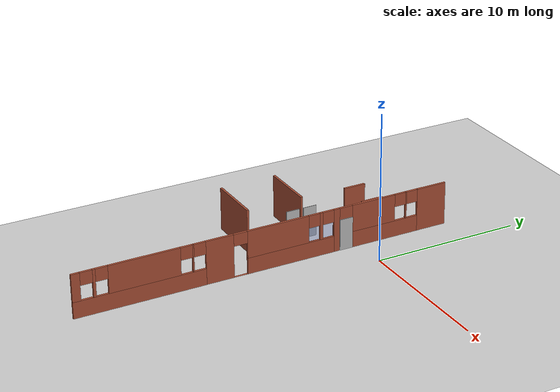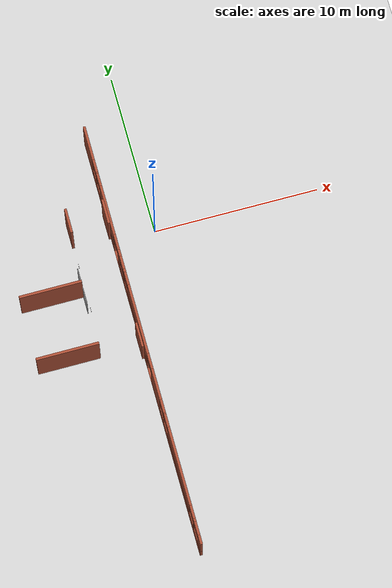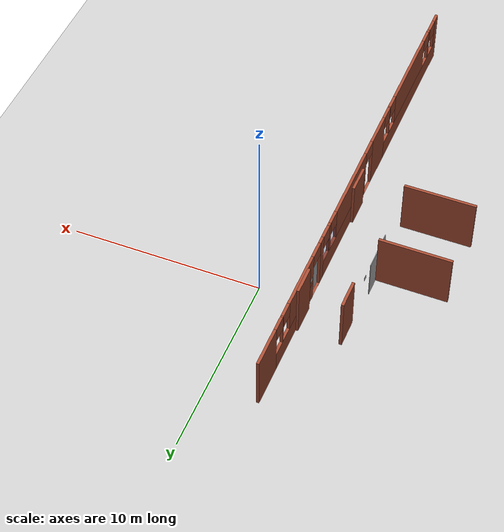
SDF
<sdf version="1.6">
 <world name="default">
  <model name="ground_plane">
   <static>1</static>
   <link name="link">
    <collision name="collision">
     <geometry><plane><normal>0 0 1</normal><size>100 100</size></plane></geometry>
     <surface><friction><ode><mu>100</mu><mu2>50</mu2></ode></friction></surface>
    </collision>
    <visual name="visual">
     <cast_shadows>0</cast_shadows>
     <geometry><plane><normal>0 0 1</normal><size>100 100</size></plane></geometry>
     <material>
      <script><uri>file://media/materials/scripts/gazebo.material</uri><name>Gazebo/Grey</name></script>
     </material>
    </visual>
   </link>
  </model>
  <model name="UNFRGS_INF_-_Predio_73">
   <pose>-0.02513 1.0401 -0.009 0 -0 0</pose>
   <link name="Wall_142">
    <pose>-2.51213 -7.60722 0 0 0 -1.5708</pose>
    <visual name="Wall_142_Visual_0">
     <pose>-11.9297 0 1.48 0 -0 0</pose>
     <geometry><box><size>2.14059 0.15 2.96</size></box></geometry>
     <material>
      <script><uri>file://media/materials/scripts/gazebo.material</uri><name>Gazebo/Bricks</name></script>
      <ambient>0.929412 1 0.760784 1</ambient>
     </material>
     <meta><layer>0</layer></meta>
    </visual>
    <collision name="Wall_142_Collision_0">
     <geometry><box><size>2.14059 0.15 2.96</size></box></geometry>
     <pose>-11.9297 0 1.48 0 -0 0</pose>
    </collision>
    <visual name="Wall_142_Visual_1">
     <pose>-4.8989 0 1.48 0 -0 0</pose>
     <geometry><box><size>0.419844 0.15 2.96</size></box></geometry>
     <material>
      <script><uri>file://media/materials/scripts/gazebo.material</uri><name>Gazebo/Bricks</name></script>
      <ambient>0.929412 1 0.760784 1</ambient>
     </material>
     <meta><layer>0</layer></meta>
    </visual>
    <collision name="Wall_142_Collision_1">
     <geometry><box><size>0.419844 0.15 2.96</size></box></geometry>
     <pose>-4.8989 0 1.48 0 -0 0</pose>
    </collision>
    <visual name="Wall_142_Visual_2">
     <pose>3.3104 0 1.48 0 -0 0</pose>
     <geometry><box><size>1.8907 0.15 2.96</size></box></geometry>
     <material>
      <script><uri>file://media/materials/scripts/gazebo.material</uri><name>Gazebo/Bricks</name></script>
      <ambient>0.929412 1 0.760784 1</ambient>
     </material>
     <meta><layer>0</layer></meta>
    </visual>
    <collision name="Wall_142_Collision_2">
     <geometry><box><size>1.8907 0.15 2.96</size></box></geometry>
     <pose>3.3104 0 1.48 0 -0 0</pose>
    </collision>
    <visual name="Wall_142_Visual_3">
     <pose>-8.45412 0 0.55 0 -0 0</pose>
     <geometry><box><size>4.81058 0.15 1.11</size></box></geometry>
     <material>
      <script><uri>file://media/materials/scripts/gazebo.material</uri><name>Gazebo/Bricks</name></script>
      <ambient>0.929412 1 0.760784 1</ambient>
     </material>
     <meta><layer>0</layer></meta>
    </visual>
    <collision name="Wall_142_Collision_3">
     <geometry><box><size>4.81058 0.15 1.11</size></box></geometry>
     <pose>-8.45412 0 0.55 0 -0 0</pose>
    </collision>
    <visual name="Wall_142_Visual_4">
     <pose>-1.63197 0 0.55 0 -0 0</pose>
     <geometry><box><size>6.11403 0.15 1.11</size></box></geometry>
     <material>
      <script><uri>file://media/materials/scripts/gazebo.material</uri><name>Gazebo/Bricks</name></script>
      <ambient>0.929412 1 0.760784 1</ambient>
     </material>
     <meta><layer>0</layer></meta>
    </visual>
    <collision name="Wall_142_Collision_4">
     <geometry><box><size>6.11403 0.15 1.11</size></box></geometry>
     <pose>-1.63197 0 0.55 0 -0 0</pose>
    </collision>
    <visual name="Wall_142_Visual_5">
     <pose>8.62787 0 0.55 0 -0 0</pose>
     <geometry><box><size>8.74425 0.15 1.11</size></box></geometry>
     <material>
      <script><uri>file://media/materials/scripts/gazebo.material</uri><name>Gazebo/Bricks</name></script>
      <ambient>0.929412 1 0.760784 1</ambient>
     </material>
     <meta><layer>0</layer></meta>
    </visual>
    <collision name="Wall_142_Collision_5">
     <geometry><box><size>8.74425 0.15 1.11</size></box></geometry>
     <pose>8.62787 0 0.55 0 -0 0</pose>
    </collision>
    <visual name="Wall_142_Visual_6">
     <pose>-6.04883 0 1.48 0 -0 0</pose>
     <geometry><box><size>0.001 0.15 2.96</size></box></geometry>
     <material>
      <script><uri>file://media/materials/scripts/gazebo.material</uri><name>Gazebo/Bricks</name></script>
      <ambient>0.929412 1 0.760784 1</ambient>
     </material>
     <meta><layer>0</layer></meta>
    </visual>
    <collision name="Wall_142_Collision_6">
     <geometry><box><size>0.001 0.15 2.96</size></box></geometry>
     <pose>-6.04883 0 1.48 0 -0 0</pose>
    </collision>
    <visual name="Wall_142_Visual_7">
     <pose>1.89505 0 0 0 -0 0</pose>
     <geometry><box><size>0.94 0.15 0.001</size></box></geometry>
     <material>
      <script><uri>file://media/materials/scripts/gazebo.material</uri><name>Gazebo/Bricks</name></script>
      <ambient>0.929412 1 0.760784 1</ambient>
     </material>
     <meta><layer>0</layer></meta>
    </visual>
    <collision name="Wall_142_Collision_7">
     <geometry><box><size>0.94 0.15 0.001</size></box></geometry>
     <pose>1.89505 0 0 0 -0 0</pose>
    </collision>
    <visual name="Wall_142_Visual_8">
     <pose>-5.57883 0 0 0 -0 0</pose>
     <geometry><box><size>0.94 0.15 0.001</size></box></geometry>
     <material>
      <script><uri>file://media/materials/scripts/gazebo.material</uri><name>Gazebo/Bricks</name></script>
      <ambient>0.929412 1 0.760784 1</ambient>
     </material>
     <meta><layer>0</layer></meta>
    </visual>
    <collision name="Wall_142_Collision_8">
     <geometry><box><size>0.94 0.15 0.001</size></box></geometry>
     <pose>-5.57883 0 0 0 -0 0</pose>
    </collision>
    <visual name="Wall_142_Visual_9">
     <pose>-10.017 0 2.03 0 -0 0</pose>
     <geometry><box><size>0.084906 0.15 1.86</size></box></geometry>
     <material>
      <script><uri>file://media/materials/scripts/gazebo.material</uri><name>Gazebo/Bricks</name></script>
      <ambient>0.929412 1 0.760784 1</ambient>
     </material>
     <meta><layer>0</layer></meta>
    </visual>
    <collision name="Wall_142_Collision_9">
     <geometry><box><size>0.084906 0.15 1.86</size></box></geometry>
     <pose>-10.017 0 2.03 0 -0 0</pose>
    </collision>
    <visual name="Wall_142_Visual_10">
     <pose>-7.61167 0 2.03 0 -0 0</pose>
     <geometry><box><size>3.12568 0.15 1.86</size></box></geometry>
     <material>
      <script><uri>file://media/materials/scripts/gazebo.material</uri><name>Gazebo/Bricks</name></script>
      <ambient>0.929412 1 0.760784 1</ambient>
     </material>
     <meta><layer>0</layer></meta>
    </visual>
    <collision name="Wall_142_Collision_10">
     <geometry><box><size>3.12568 0.15 1.86</size></box></geometry>
     <pose>-7.61167 0 2.03 0 -0 0</pose>
    </collision>
    <visual name="Wall_142_Visual_11">
     <pose>-7.61167 0 2.03 0 -0 0</pose>
     <geometry><box><size>3.12568 0.15 1.86</size></box></geometry>
     <material>
      <script><uri>file://media/materials/scripts/gazebo.material</uri><name>Gazebo/Bricks</name></script>
      <ambient>0.929412 1 0.760784 1</ambient>
     </material>
     <meta><layer>0</layer></meta>
    </visual>
    <collision name="Wall_142_Collision_11">
     <geometry><box><size>3.12568 0.15 1.86</size></box></geometry>
     <pose>-7.61167 0 2.03 0 -0 0</pose>
    </collision>
    <visual name="Wall_142_Visual_12">
     <pose>-3.78674 0 2.03 0 -0 0</pose>
     <geometry><box><size>0.204488 0.15 1.86</size></box></geometry>
     <material>
      <script><uri>file://media/materials/scripts/gazebo.material</uri><name>Gazebo/Bricks</name></script>
      <ambient>0.929412 1 0.760784 1</ambient>
     </material>
     <meta><layer>0</layer></meta>
    </visual>
    <collision name="Wall_142_Collision_12">
     <geometry><box><size>0.204488 0.15 1.86</size></box></geometry>
     <pose>-3.78674 0 2.03 0 -0 0</pose>
    </collision>
    <visual name="Wall_142_Visual_13">
     <pose>-0.729724 0 2.03 0 -0 0</pose>
     <geometry><box><size>4.30954 0.15 1.86</size></box></geometry>
     <material>
      <script><uri>file://media/materials/scripts/gazebo.material</uri><name>Gazebo/Bricks</name></script>
      <ambient>0.929412 1 0.760784 1</ambient>
     </material>
     <meta><layer>0</layer></meta>
    </visual>
    <collision name="Wall_142_Collision_13">
     <geometry><box><size>4.30954 0.15 1.86</size></box></geometry>
     <pose>-0.729724 0 2.03 0 -0 0</pose>
    </collision>
    <visual name="Wall_142_Visual_14">
     <pose>-0.729724 0 2.03 0 -0 0</pose>
     <geometry><box><size>4.30954 0.15 1.86</size></box></geometry>
     <material>
      <script><uri>file://media/materials/scripts/gazebo.material</uri><name>Gazebo/Bricks</name></script>
      <ambient>0.929412 1 0.760784 1</ambient>
     </material>
     <meta><layer>0</layer></meta>
    </visual>
    <collision name="Wall_142_Collision_14">
     <geometry><box><size>4.30954 0.15 1.86</size></box></geometry>
     <pose>-0.729724 0 2.03 0 -0 0</pose>
    </collision>
    <visual name="Wall_142_Visual_15">
     <pose>5.0982 0 2.03 0 -0 0</pose>
     <geometry><box><size>0.084907 0.15 1.86</size></box></geometry>
     <material>
      <script><uri>file://media/materials/scripts/gazebo.material</uri><name>Gazebo/Bricks</name></script>
      <ambient>0.929412 1 0.760784 1</ambient>
     </material>
     <meta><layer>0</layer></meta>
    </visual>
    <collision name="Wall_142_Collision_15">
     <geometry><box><size>0.084907 0.15 1.86</size></box></geometry>
     <pose>5.0982 0 2.03 0 -0 0</pose>
    </collision>
    <visual name="Wall_142_Visual_16">
     <pose>8.303 0 2.03 0 -0 0</pose>
     <geometry><box><size>4.72469 0.15 1.86</size></box></geometry>
     <material>
      <script><uri>file://media/materials/scripts/gazebo.material</uri><name>Gazebo/Bricks</name></script>
      <ambient>0.929412 1 0.760784 1</ambient>
     </material>
     <meta><layer>0</layer></meta>
    </visual>
    <collision name="Wall_142_Collision_16">
     <geometry><box><size>4.72469 0.15 1.86</size></box></geometry>
     <pose>8.303 0 2.03 0 -0 0</pose>
    </collision>
    <visual name="Wall_142_Visual_17">
     <pose>11.5556 0 2.03 0 -0 0</pose>
     <geometry><box><size>0.180572 0.15 1.86</size></box></geometry>
     <material>
      <script><uri>file://media/materials/scripts/gazebo.material</uri><name>Gazebo/Bricks</name></script>
      <ambient>0.929412 1 0.760784 1</ambient>
     </material>
     <meta><layer>0</layer></meta>
    </visual>
    <collision name="Wall_142_Collision_17">
     <geometry><box><size>0.180572 0.15 1.86</size></box></geometry>
     <pose>11.5556 0 2.03 0 -0 0</pose>
    </collision>
    <visual name="Wall_142_Visual_18">
     <pose>12.723 0 2.03 0 -0 0</pose>
     <geometry><box><size>0.55409 0.15 1.86</size></box></geometry>
     <material>
      <script><uri>file://media/materials/scripts/gazebo.material</uri><name>Gazebo/Bricks</name></script>
      <ambient>0.929412 1 0.760784 1</ambient>
     </material>
     <meta><layer>0</layer></meta>
    </visual>
    <collision name="Wall_142_Collision_18">
     <geometry><box><size>0.55409 0.15 1.86</size></box></geometry>
     <pose>12.723 0 2.03 0 -0 0</pose>
    </collision>
    <visual name="Wall_142_Visual_19">
     <pose>-10.4594 0 2.53 0 -0 0</pose>
     <geometry><box><size>0.8 0.15 0.86</size></box></geometry>
     <material>
      <script><uri>file://media/materials/scripts/gazebo.material</uri><name>Gazebo/Bricks</name></script>
      <ambient>0.929412 1 0.760784 1</ambient>
     </material>
     <meta><layer>0</layer></meta>
    </visual>
    <collision name="Wall_142_Collision_19">
     <geometry><box><size>0.8 0.15 0.86</size></box></geometry>
     <pose>-10.4594 0 2.53 0 -0 0</pose>
    </collision>
    <visual name="Wall_142_Visual_20">
     <pose>-4.28898 0 2.53 0 -0 0</pose>
     <geometry><box><size>0.8 0.15 0.86</size></box></geometry>
     <material>
      <script><uri>file://media/materials/scripts/gazebo.material</uri><name>Gazebo/Bricks</name></script>
      <ambient>0.929412 1 0.760784 1</ambient>
     </material>
     <meta><layer>0</layer></meta>
    </visual>
    <collision name="Wall_142_Collision_20">
     <geometry><box><size>0.8 0.15 0.86</size></box></geometry>
     <pose>-4.28898 0 2.53 0 -0 0</pose>
    </collision>
    <visual name="Wall_142_Visual_21">
     <pose>4.65575 0 2.53 0 -0 0</pose>
     <geometry><box><size>0.8 0.15 0.86</size></box></geometry>
     <material>
      <script><uri>file://media/materials/scripts/gazebo.material</uri><name>Gazebo/Bricks</name></script>
      <ambient>0.929412 1 0.760784 1</ambient>
     </material>
     <meta><layer>0</layer></meta>
    </visual>
    <collision name="Wall_142_Collision_21">
     <geometry><box><size>0.8 0.15 0.86</size></box></geometry>
     <pose>4.65575 0 2.53 0 -0 0</pose>
    </collision>
    <visual name="Wall_142_Visual_22">
     <pose>-9.5745 0 2.53 0 -0 0</pose>
     <geometry><box><size>0.8 0.15 0.86</size></box></geometry>
     <material>
      <script><uri>file://media/materials/scripts/gazebo.material</uri><name>Gazebo/Bricks</name></script>
      <ambient>0.929412 1 0.760784 1</ambient>
     </material>
     <meta><layer>0</layer></meta>
    </visual>
    <collision name="Wall_142_Collision_22">
     <geometry><box><size>0.8 0.15 0.86</size></box></geometry>
     <pose>-9.5745 0 2.53 0 -0 0</pose>
    </collision>
    <visual name="Wall_142_Visual_23">
     <pose>-3.28449 0 2.53 0 -0 0</pose>
     <geometry><box><size>0.8 0.15 0.86</size></box></geometry>
     <material>
      <script><uri>file://media/materials/scripts/gazebo.material</uri><name>Gazebo/Bricks</name></script>
      <ambient>0.929412 1 0.760784 1</ambient>
     </material>
     <meta><layer>0</layer></meta>
    </visual>
    <collision name="Wall_142_Collision_23">
     <geometry><box><size>0.8 0.15 0.86</size></box></geometry>
     <pose>-3.28449 0 2.53 0 -0 0</pose>
    </collision>
    <visual name="Wall_142_Visual_24">
     <pose>5.54065 0 2.53 0 -0 0</pose>
     <geometry><box><size>0.8 0.15 0.86</size></box></geometry>
     <material>
      <script><uri>file://media/materials/scripts/gazebo.material</uri><name>Gazebo/Bricks</name></script>
      <ambient>0.929412 1 0.760784 1</ambient>
     </material>
     <meta><layer>0</layer></meta>
    </visual>
    <collision name="Wall_142_Collision_24">
     <geometry><box><size>0.8 0.15 0.86</size></box></geometry>
     <pose>5.54065 0 2.53 0 -0 0</pose>
    </collision>
    <visual name="Wall_142_Visual_25">
     <pose>11.0653 0 2.53 0 -0 0</pose>
     <geometry><box><size>0.8 0.15 0.86</size></box></geometry>
     <material>
      <script><uri>file://media/materials/scripts/gazebo.material</uri><name>Gazebo/Bricks</name></script>
      <ambient>0.929412 1 0.760784 1</ambient>
     </material>
     <meta><layer>0</layer></meta>
    </visual>
    <collision name="Wall_142_Collision_25">
     <geometry><box><size>0.8 0.15 0.86</size></box></geometry>
     <pose>11.0653 0 2.53 0 -0 0</pose>
    </collision>
    <visual name="Wall_142_Visual_26">
     <pose>12.0459 0 2.53 0 -0 0</pose>
     <geometry><box><size>0.8 0.15 0.86</size></box></geometry>
     <material>
      <script><uri>file://media/materials/scripts/gazebo.material</uri><name>Gazebo/Bricks</name></script>
      <ambient>0.929412 1 0.760784 1</ambient>
     </material>
     <meta><layer>0</layer></meta>
    </visual>
    <collision name="Wall_142_Collision_26">
     <geometry><box><size>0.8 0.15 0.86</size></box></geometry>
     <pose>12.0459 0 2.53 0 -0 0</pose>
    </collision>
    <visual name="Wall_142_Visual_27">
     <pose>-5.57883 0 2.555 0 -0 0</pose>
     <geometry><box><size>0.94 0.15 0.81</size></box></geometry>
     <material>
      <script><uri>file://media/materials/scripts/gazebo.material</uri><name>Gazebo/Bricks</name></script>
      <ambient>0.929412 1 0.760784 1</ambient>
     </material>
     <meta><layer>0</layer></meta>
    </visual>
    <collision name="Wall_142_Collision_27">
     <geometry><box><size>0.94 0.15 0.81</size></box></geometry>
     <pose>-5.57883 0 2.555 0 -0 0</pose>
    </collision>
    <visual name="Wall_142_Visual_28">
     <pose>1.89505 0 2.555 0 -0 0</pose>
     <geometry><box><size>0.94 0.15 0.81</size></box></geometry>
     <material>
      <script><uri>file://media/materials/scripts/gazebo.material</uri><name>Gazebo/Bricks</name></script>
      <ambient>0.929412 1 0.760784 1</ambient>
     </material>
     <meta><layer>0</layer></meta>
    </visual>
    <collision name="Wall_142_Collision_28">
     <geometry><box><size>0.94 0.15 0.81</size></box></geometry>
     <pose>1.89505 0 2.555 0 -0 0</pose>
    </collision>
    <visual name="Wall_142_Visual_29">
     <pose>1.89505 0 2.555 0 -0 0</pose>
     <geometry><box><size>0.94 0.15 0.81</size></box></geometry>
     <material>
      <script><uri>file://media/materials/scripts/gazebo.material</uri><name>Gazebo/Bricks</name></script>
      <ambient>0.929412 1 0.760784 1</ambient>
     </material>
     <meta><layer>0</layer></meta>
    </visual>
    <collision name="Wall_142_Collision_29">
     <geometry><box><size>0.94 0.15 0.81</size></box></geometry>
     <pose>1.89505 0 2.555 0 -0 0</pose>
    </collision>
   </link>
   <link name="Wall_177">
    <collision name="Wall_177_Collision">
     <geometry><box><size>1.5 0.15 2.96</size></box></geometry>
     <pose>0 0 1.48 0 -0 0</pose>
    </collision>
    <visual name="Wall_177_Visual">
     <pose>0 0 1.48 0 -0 0</pose>
     <geometry><box><size>1.5 0.15 2.96</size></box></geometry>
     <material>
      <script><uri>file://media/materials/scripts/gazebo.material</uri><name>Gazebo/Bricks</name></script>
      <ambient>0.929412 1 0.760784 1</ambient>
     </material>
     <meta><layer>0</layer></meta>
    </visual>
    <pose>-4.87613 -0.024219 0 0 0 -1.5708</pose>
   </link>
   <link name="Wall_183">
    <collision name="Wall_183_Collision">
     <geometry><box><size>3.75 0.15 2.96</size></box></geometry>
     <pose>0 0 1.48 0 -0 0</pose>
    </collision>
    <visual name="Wall_183_Visual">
     <pose>0 0 1.48 0 -0 0</pose>
     <geometry><box><size>3.75 0.15 2.96</size></box></geometry>
     <material>
      <script><uri>file://media/materials/scripts/gazebo.material</uri><name>Gazebo/Bricks</name></script>
      <ambient>0.929412 1 0.760784 1</ambient>
     </material>
     <meta><layer>0</layer></meta>
    </visual>
    <pose>-6.94213 -3.80022 0 0 -0 0</pose>
   </link>
   <link name="Wall_185">
    <collision name="Wall_185_Collision">
     <geometry><box><size>1.5 0.15 2.96</size></box></geometry>
     <pose>0 0 1.48 0 -0 0</pose>
    </collision>
    <visual name="Wall_185_Visual">
     <pose>0 0 1.48 0 -0 0</pose>
     <geometry><box><size>1.5 0.15 2.96</size></box></geometry>
     <material>
      <script><uri>file://media/materials/scripts/gazebo.material</uri><name>Gazebo/Bricks</name></script>
      <ambient>0.929412 1 0.760784 1</ambient>
     </material>
     <meta><layer>0</layer></meta>
    </visual>
    <pose>-2.63613 -0.038219 0 0 0 -1.5708</pose>
   </link>
   <link name="Wall_197">
    <collision name="Wall_197_Collision">
     <geometry><box><size>3.75 0.15 2.96</size></box></geometry>
     <pose>0 0 1.48 0 -0 0</pose>
    </collision>
    <visual name="Wall_197_Visual">
     <pose>0 0 1.48 0 -0 0</pose>
     <geometry><box><size>3.75 0.15 2.96</size></box></geometry>
     <material>
      <script><uri>file://media/materials/scripts/gazebo.material</uri><name>Gazebo/Bricks</name></script>
      <ambient>0.929412 1 0.760784 1</ambient>
     </material>
     <meta><layer>0</layer></meta>
    </visual>
    <pose>-6.92813 -7.66622 0 0 -0 0</pose>
   </link>
   <link name="Wall_203">
    <collision name="Wall_203_Collision">
     <geometry><box><size>1.5 0.15 2.5</size></box></geometry>
     <pose>0 0 1.25 0 -0 0</pose>
    </collision>
    <visual name="Wall_203_Visual">
     <pose>0 0 1.25 0 -0 0</pose>
     <geometry><box><size>1.5 0.15 2.5</size></box></geometry>
     <material>
      <script><uri>file://media/materials/scripts/gazebo.material</uri><name>Gazebo/Bricks</name></script>
      <ambient>0.929412 1 0.760784 1</ambient>
     </material>
     <meta><layer>0</layer></meta>
    </visual>
    <pose>-2.65035 -7.67411 0 0 0 -1.5708</pose>
   </link>
   <static>1</static>
  </model>
  <model name="placa_232">
   <pose>-2.615 -0.3 1.48209 0 -0 1.57</pose>
   <static>1</static>
   <link name="link">
    <collision name="collision"><geometry><box><size>0.268 0.001 0.268</size></box></geometry></collision>
    <visual name="visual">
     <geometry><box><size>0.268 0.001 0.268</size></box></geometry>
     <material>
      <script>
       <uri>model://Placa_232/Materials/Scripts</uri>
       <uri>model://Placa_232/Materials/Textures</uri>
       <name>TexturaPlaca_232/Image</name>
      </script>
     </material>
    </visual>
   </link>
  </model>
  <model name="placa_234">
   <pose>-4.96 -1.4 1.48208 0 -0 1.57</pose>
   <static>1</static>
   <link name="link">
    <collision name="collision"><geometry><box><size>0.268 0.001 0.268</size></box></geometry></collision>
    <visual name="visual">
     <geometry><box><size>0.268 0.001 0.268</size></box></geometry>
     <material>
      <script>
       <uri>model://Placa_234/Materials/Scripts</uri>
       <uri>model://Placa_234/Materials/Textures</uri>
       <name>TexturaPlaca_234/Image</name>
      </script>
     </material>
    </visual>
   </link>
  </model>
  <model name="placa_236">
   <pose>-4.96 -4.15 1.48208 0 -0 1.57</pose>
   <static>1</static>
   <link name="link">
    <collision name="collision"><geometry><box><size>0.268 0.001 0.268</size></box></geometry></collision>
    <visual name="visual">
     <geometry><box><size>0.268 0.001 0.268</size></box></geometry>
     <material>
      <script>
       <uri>model://Placa_236/Materials/Scripts</uri>
       <uri>model://Placa_236/Materials/Textures</uri>
       <name>TexturaPlaca_236/Image</name>
      </script>
     </material>
    </visual>
   </link>
  </model>
  <model name="PortaInternaDireita_3">
   <pose>-5.1 -2.16814 1.075 0 -0 1.57</pose>
   <static>1</static>
   <link name="link">
    <collision name="collision"><geometry><box><size>2.15 3.5 0.94</size></box></geometry></collision>
    <visual name="visual">
     <geometry><box><size>0.94 0.035 2.15</size></box></geometry>
     <material>
      <script>
       <uri>model://PortaInternaDireita/materials/scripts</uri>
       <uri>model://PortaInternaDireita/materials/textures</uri>
       <name>TexturaPortaInternaDireita/Image</name>
      </script>
     </material>
    </visual>
   </link>
  </model>
  <model name="PortaInternaEsquerda_6">
   <pose>-5.1 -3.4 1.075 0 -0 1.57</pose>
   <static>1</static>
   <link name="link">
    <collision name="collision"><geometry><box><size>2.15 3.5 0.94</size></box></geometry></collision>
    <visual name="visual">
     <geometry><box><size>0.94 0.035 2.15</size></box></geometry>
     <material>
      <script>
       <uri>model://PortaInternaEsquerda/materials/scripts</uri>
       <uri>model://PortaInternaEsquerda/materials/textures</uri>
       <name>TexturaPortaInternaEsquerda/Image</name>
      </script>
     </material>
    </visual>
   </link>
  </model>
  <model name="PortaInternaEsquerda_24">
   <pose>-2.45 -0.990363 1.075 0 -0 1.57</pose>
   <static>1</static>
   <link name="link">
    <collision name="collision"><geometry><box><size>2.15 3.5 0.94</size></box></geometry></collision>
    <visual name="visual">
     <geometry><box><size>0.94 0.035 2.15</size></box></geometry>
     <material>
      <script>
       <uri>model://PortaInternaEsquerda/materials/scripts</uri>
       <uri>model://PortaInternaEsquerda/materials/textures</uri>
       <name>TexturaPortaInternaEsquerda/Image</name>
      </script>
     </material>
    </visual>
   </link>
  </model>
  <model name="vidro_91">
   <pose>-2.58257 -2.22481 0.356049 0 -0 1.6</pose>
   <link name="Wall_2">
    <collision name="Wall_2_Collision">
     <geometry><box><size>1 0.001 1</size></box></geometry>
     <pose>0 0 1.25 0 -0 0</pose>
    </collision>
    <visual name="Wall_2_Visual">
     <pose>0 0 1.25 0 -0 0</pose>
     <transparency>0.8</transparency>
     <geometry><box><size>1 0.001 1</size></box></geometry>
     <material>
      <script><uri>file://media/materials/scripts/gazebo.material</uri><name>Gazebo/BlueTransparent</name></script>
      <ambient>0.1 0.1 0.1 0.1</ambient>
     </material>
     <meta><layer>0</layer></meta>
    </visual>
    <pose>0 0 0 0 -0 3.14159</pose>
   </link>
   <static>1</static>
  </model>
  <model name="vidro_92">
   <pose>-2.57232 -3.19264 0.355736 0 -0 1.6</pose>
   <link name="Wall_2">
    <collision name="Wall_2_Collision">
     <geometry><box><size>1 0.001 1</size></box></geometry>
     <pose>0 0 1.25 0 -0 0</pose>
    </collision>
    <visual name="Wall_2_Visual">
     <pose>0 0 1.25 0 -0 0</pose>
     <transparency>0.8</transparency>
     <geometry><box><size>1 0.001 1</size></box></geometry>
     <material>
      <script><uri>file://media/materials/scripts/gazebo.material</uri><name>Gazebo/BlueTransparent</name></script>
      <ambient>0.1 0.1 0.1 0.1</ambient>
     </material>
     <meta><layer>0</layer></meta>
    </visual>
    <pose>0 0 0 0 -0 3.14159</pose>
   </link>
   <static>1</static>
  </model>
 </world>
</sdf>
